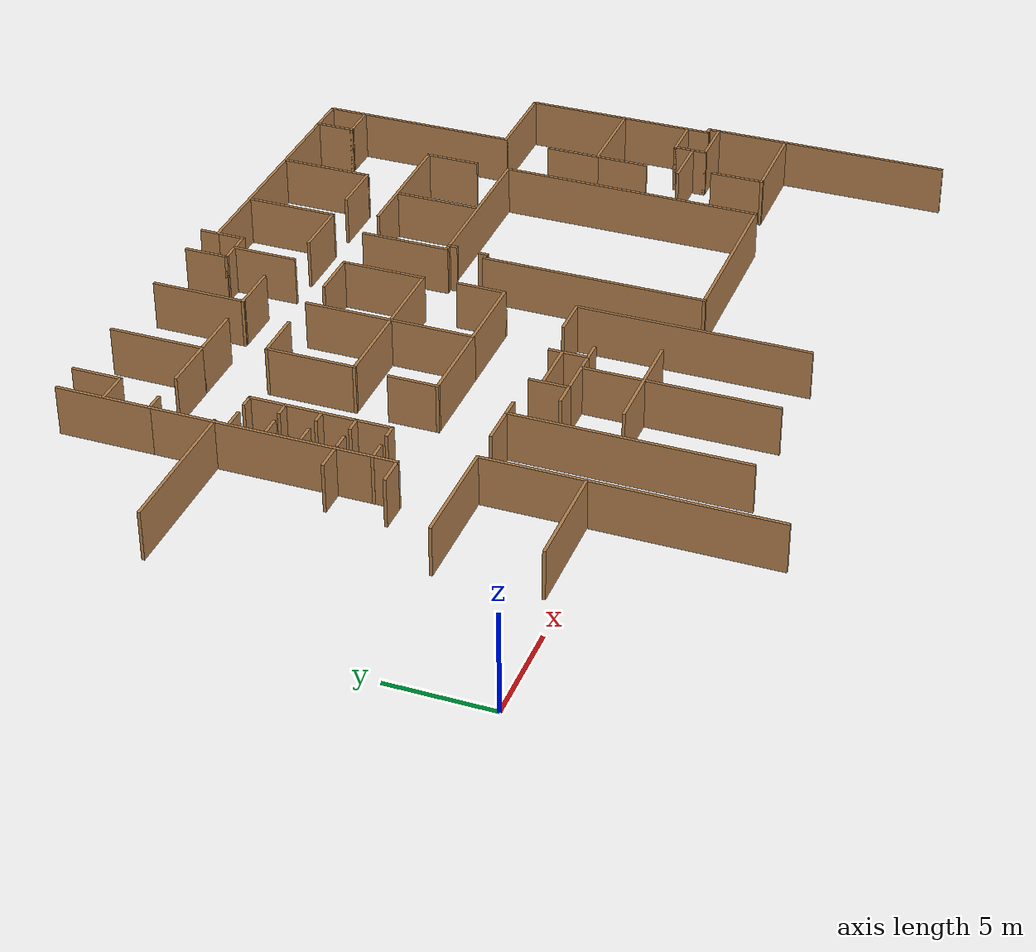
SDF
<sdf version="1.6">
 <model name="floor_plan">
  <pose>-1.19231 -1.13475 0 0 -0 0</pose>
  <link name="Wall_10">
   <collision name="Wall_10_Collision">
    <geometry><box><size>10 0.15 2.5</size></box></geometry>
    <pose>0 0 1.25 0 -0 0</pose>
   </collision>
   <visual name="Wall_10_Visual">
    <pose>0 0 1.25 0 -0 0</pose>
    <geometry><box><size>10 0.15 2.5</size></box></geometry>
    <material>
     <script><uri>file://media/materials/scripts/gazebo.material</uri><name>Gazebo/Wood</name></script>
     <ambient>1 1 1 1</ambient>
    </material>
   </visual>
   <pose>40.65 20.6964 0 0 0 -1.5708</pose>
  </link>
  <link name="Wall_100">
   <collision name="Wall_100_Collision">
    <geometry><box><size>2.25 0.15 2.5</size></box></geometry>
    <pose>0 0 1.25 0 -0 0</pose>
   </collision>
   <visual name="Wall_100_Visual">
    <pose>0 0 1.25 0 -0 0</pose>
    <geometry><box><size>2.25 0.15 2.5</size></box></geometry>
    <material>
     <script><uri>file://media/materials/scripts/gazebo.material</uri><name>Gazebo/Wood</name></script>
     <ambient>1 1 1 1</ambient>
    </material>
   </visual>
   <pose>24.95 25.3214 0 0 -0 1.5708</pose>
  </link>
  <link name="Wall_102">
   <collision name="Wall_102_Collision">
    <geometry><box><size>3.25 0.15 2.5</size></box></geometry>
    <pose>0 0 1.25 0 -0 0</pose>
   </collision>
   <visual name="Wall_102_Visual">
    <pose>0 0 1.25 0 -0 0</pose>
    <geometry><box><size>3.25 0.15 2.5</size></box></geometry>
    <material>
     <script><uri>file://media/materials/scripts/gazebo.material</uri><name>Gazebo/Wood</name></script>
     <ambient>1 1 1 1</ambient>
    </material>
   </visual>
   <pose>25.8652 22.6731 0 0 0 -1.5708</pose>
  </link>
  <link name="Wall_104">
   <collision name="Wall_104_Collision">
    <geometry><box><size>3 0.15 2.5</size></box></geometry>
    <pose>0 0 1.25 0 -0 0</pose>
   </collision>
   <visual name="Wall_104_Visual">
    <pose>0 0 1.25 0 -0 0</pose>
    <geometry><box><size>3 0.15 2.5</size></box></geometry>
    <material>
     <script><uri>file://media/materials/scripts/gazebo.material</uri><name>Gazebo/Wood</name></script>
     <ambient>1 1 1 1</ambient>
    </material>
   </visual>
   <pose>28.998 21.0922 0 0 -0 0</pose>
  </link>
  <link name="Wall_105">
   <collision name="Wall_105_Collision">
    <geometry><box><size>4.65 0.15 2.5</size></box></geometry>
    <pose>0 0 1.25 0 -0 0</pose>
   </collision>
   <visual name="Wall_105_Visual">
    <pose>0 0 1.25 0 -0 0</pose>
    <geometry><box><size>4.65 0.15 2.5</size></box></geometry>
    <material>
     <script><uri>file://media/materials/scripts/gazebo.material</uri><name>Gazebo/Wood</name></script>
     <ambient>1 1 1 1</ambient>
    </material>
   </visual>
   <pose>30.423 23.3422 0 0 -0 1.5708</pose>
  </link>
  <link name="Wall_107">
   <collision name="Wall_107_Collision">
    <geometry><box><size>2.75 0.15 2.5</size></box></geometry>
    <pose>0 0 1.25 0 -0 0</pose>
   </collision>
   <visual name="Wall_107_Visual">
    <pose>0 0 1.25 0 -0 0</pose>
    <geometry><box><size>2.75 0.15 2.5</size></box></geometry>
    <material>
     <script><uri>file://media/materials/scripts/gazebo.material</uri><name>Gazebo/Wood</name></script>
     <ambient>1 1 1 1</ambient>
    </material>
   </visual>
   <pose>33.3717 21.0672 0 0 -0 0</pose>
  </link>
  <link name="Wall_108">
   <collision name="Wall_108_Collision">
    <geometry><box><size>4.65 0.15 2.5</size></box></geometry>
    <pose>0 0 1.25 0 -0 0</pose>
   </collision>
   <visual name="Wall_108_Visual">
    <pose>0 0 1.25 0 -0 0</pose>
    <geometry><box><size>4.65 0.15 2.5</size></box></geometry>
    <material>
     <script><uri>file://media/materials/scripts/gazebo.material</uri><name>Gazebo/Wood</name></script>
     <ambient>1 1 1 1</ambient>
    </material>
   </visual>
   <pose>34.6717 23.3172 0 0 -0 1.5708</pose>
  </link>
  <link name="Wall_11">
   <collision name="Wall_11_Collision">
    <geometry><box><size>4.5 0.15 2.5</size></box></geometry>
    <pose>0 0 1.25 0 -0 0</pose>
   </collision>
   <visual name="Wall_11_Visual">
    <pose>0 0 1.25 0 -0 0</pose>
    <geometry><box><size>4.5 0.15 2.5</size></box></geometry>
    <material>
     <script><uri>file://media/materials/scripts/gazebo.material</uri><name>Gazebo/Wood</name></script>
     <ambient>1 1 1 1</ambient>
    </material>
   </visual>
   <pose>42.825 15.7714 0 0 -0 0</pose>
  </link>
  <link name="Wall_110">
   <collision name="Wall_110_Collision">
    <geometry><box><size>2 0.15 2.5</size></box></geometry>
    <pose>0 0 1.25 0 -0 0</pose>
   </collision>
   <visual name="Wall_110_Visual">
    <pose>0 0 1.25 0 -0 0</pose>
    <geometry><box><size>2 0.15 2.5</size></box></geometry>
    <material>
     <script><uri>file://media/materials/scripts/gazebo.material</uri><name>Gazebo/Wood</name></script>
     <ambient>1 1 1 1</ambient>
    </material>
   </visual>
   <pose>38.8412 24.6589 0 0 0 -1.5708</pose>
  </link>
  <link name="Wall_111">
   <collision name="Wall_111_Collision">
    <geometry><box><size>1.9 0.15 2.5</size></box></geometry>
    <pose>0 0 1.25 0 -0 0</pose>
   </collision>
   <visual name="Wall_111_Visual">
    <pose>0 0 1.25 0 -0 0</pose>
    <geometry><box><size>1.9 0.15 2.5</size></box></geometry>
    <material>
     <script><uri>file://media/materials/scripts/gazebo.material</uri><name>Gazebo/Wood</name></script>
     <ambient>1 1 1 1</ambient>
    </material>
   </visual>
   <pose>39.7162 23.7339 0 0 -0 0</pose>
  </link>
  <link name="Wall_113">
   <collision name="Wall_113_Collision">
    <geometry><box><size>12 0.15 2.5</size></box></geometry>
    <pose>0 0 1.25 0 -0 0</pose>
   </collision>
   <visual name="Wall_113_Visual">
    <pose>0 0 1.25 0 -0 0</pose>
    <geometry><box><size>12 0.15 2.5</size></box></geometry>
    <material>
     <script><uri>file://media/materials/scripts/gazebo.material</uri><name>Gazebo/Wood</name></script>
     <ambient>1 1 1 1</ambient>
    </material>
   </visual>
   <pose>12.1534 15.9139 0 0 0 -1.5708</pose>
  </link>
  <link name="Wall_114">
   <collision name="Wall_114_Collision">
    <geometry><box><size>1.5 0.15 2.5</size></box></geometry>
    <pose>0 0 1.25 0 -0 0</pose>
   </collision>
   <visual name="Wall_114_Visual">
    <pose>0 0 1.25 0 -0 0</pose>
    <geometry><box><size>1.5 0.15 2.5</size></box></geometry>
    <material>
     <script><uri>file://media/materials/scripts/gazebo.material</uri><name>Gazebo/Wood</name></script>
     <ambient>1 1 1 1</ambient>
    </material>
   </visual>
   <pose>11.4784 9.98893 0 0 -0 3.14159</pose>
  </link>
  <link name="Wall_12">
   <collision name="Wall_12_Collision">
    <geometry><box><size>9.75 0.15 2.5</size></box></geometry>
    <pose>0 0 1.25 0 -0 0</pose>
   </collision>
   <visual name="Wall_12_Visual">
    <pose>0 0 1.25 0 -0 0</pose>
    <geometry><box><size>9.75 0.15 2.5</size></box></geometry>
    <material>
     <script><uri>file://media/materials/scripts/gazebo.material</uri><name>Gazebo/Wood</name></script>
     <ambient>1 1 1 1</ambient>
    </material>
   </visual>
   <pose>45 10.9714 0 0 0 -1.5708</pose>
  </link>
  <link name="Wall_120">
   <collision name="Wall_120_Collision">
    <geometry><box><size>1 0.15 2.5</size></box></geometry>
    <pose>0 0 1.25 0 -0 0</pose>
   </collision>
   <visual name="Wall_120_Visual">
    <pose>0 0 1.25 0 -0 0</pose>
    <geometry><box><size>1 0.15 2.5</size></box></geometry>
    <material>
     <script><uri>file://media/materials/scripts/gazebo.material</uri><name>Gazebo/Wood</name></script>
     <ambient>1 1 1 1</ambient>
    </material>
   </visual>
   <pose>12.6925 17.9951 0 0 -0 3.14159</pose>
  </link>
  <link name="Wall_124">
   <collision name="Wall_124_Collision">
    <geometry><box><size>1 0.15 2.5</size></box></geometry>
    <pose>0 0 1.25 0 -0 0</pose>
   </collision>
   <visual name="Wall_124_Visual">
    <pose>0 0 1.25 0 -0 0</pose>
    <geometry><box><size>1 0.15 2.5</size></box></geometry>
    <material>
     <script><uri>file://media/materials/scripts/gazebo.material</uri><name>Gazebo/Wood</name></script>
     <ambient>1 1 1 1</ambient>
    </material>
   </visual>
   <pose>12.669 16.2306 0 0 -0 3.14159</pose>
  </link>
  <link name="Wall_126">
   <collision name="Wall_126_Collision">
    <geometry><box><size>1 0.15 2.5</size></box></geometry>
    <pose>0 0 1.25 0 -0 0</pose>
   </collision>
   <visual name="Wall_126_Visual">
    <pose>0 0 1.25 0 -0 0</pose>
    <geometry><box><size>1 0.15 2.5</size></box></geometry>
    <material>
     <script><uri>file://media/materials/scripts/gazebo.material</uri><name>Gazebo/Wood</name></script>
     <ambient>1 1 1 1</ambient>
    </material>
   </visual>
   <pose>12.6219 14.5602 0 0 -0 3.14159</pose>
  </link>
  <link name="Wall_128">
   <collision name="Wall_128_Collision">
    <geometry><box><size>1 0.15 2.5</size></box></geometry>
    <pose>0 0 1.25 0 -0 0</pose>
   </collision>
   <visual name="Wall_128_Visual">
    <pose>0 0 1.25 0 -0 0</pose>
    <geometry><box><size>1 0.15 2.5</size></box></geometry>
    <material>
     <script><uri>file://media/materials/scripts/gazebo.material</uri><name>Gazebo/Wood</name></script>
     <ambient>1 1 1 1</ambient>
    </material>
   </visual>
   <pose>12.6454 12.8898 0 0 -0 3.14159</pose>
  </link>
  <link name="Wall_13">
   <collision name="Wall_13_Collision">
    <geometry><box><size>0.5 0.15 2.5</size></box></geometry>
    <pose>0 0 1.25 0 -0 0</pose>
   </collision>
   <visual name="Wall_13_Visual">
    <pose>0 0 1.25 0 -0 0</pose>
    <geometry><box><size>0.5 0.15 2.5</size></box></geometry>
    <material>
     <script><uri>file://media/materials/scripts/gazebo.material</uri><name>Gazebo/Wood</name></script>
     <ambient>1 1 1 1</ambient>
    </material>
   </visual>
   <pose>45.175 6.1714 0 0 -0 0</pose>
  </link>
  <link name="Wall_130">
   <collision name="Wall_130_Collision">
    <geometry><box><size>1 0.15 2.5</size></box></geometry>
    <pose>0 0 1.25 0 -0 0</pose>
   </collision>
   <visual name="Wall_130_Visual">
    <pose>0 0 1.25 0 -0 0</pose>
    <geometry><box><size>1 0.15 2.5</size></box></geometry>
    <material>
     <script><uri>file://media/materials/scripts/gazebo.material</uri><name>Gazebo/Wood</name></script>
     <ambient>1 1 1 1</ambient>
    </material>
   </visual>
   <pose>12.5749 11.1253 0 0 -0 3.14159</pose>
  </link>
  <link name="Wall_14">
   <collision name="Wall_14_Collision">
    <geometry><box><size>12.5 0.15 2.5</size></box></geometry>
    <pose>0 0 1.25 0 -0 0</pose>
   </collision>
   <visual name="Wall_14_Visual">
    <pose>0 0 1.25 0 -0 0</pose>
    <geometry><box><size>12.5 0.15 2.5</size></box></geometry>
    <material>
     <script><uri>file://media/materials/scripts/gazebo.material</uri><name>Gazebo/Wood</name></script>
     <ambient>1 1 1 1</ambient>
    </material>
   </visual>
   <pose>45.35 -0.003604 0 0 0 -1.5708</pose>
  </link>
  <link name="Wall_142">
   <collision name="Wall_142_Collision">
    <geometry><box><size>0.75 0.15 2.5</size></box></geometry>
    <pose>0 0 1.25 0 -0 0</pose>
   </collision>
   <visual name="Wall_142_Visual">
    <pose>0 0 1.25 0 -0 0</pose>
    <geometry><box><size>0.75 0.15 2.5</size></box></geometry>
    <material>
     <script><uri>file://media/materials/scripts/gazebo.material</uri><name>Gazebo/Wood</name></script>
     <ambient>1 1 1 1</ambient>
    </material>
   </visual>
   <pose>14.1127 18.0225 0 0 -0 0</pose>
  </link>
  <link name="Wall_143">
   <collision name="Wall_143_Collision">
    <geometry><box><size>7 0.15 2.5</size></box></geometry>
    <pose>0 0 1.25 0 -0 0</pose>
   </collision>
   <visual name="Wall_143_Visual">
    <pose>0 0 1.25 0 -0 0</pose>
    <geometry><box><size>7 0.15 2.5</size></box></geometry>
    <material>
     <script><uri>file://media/materials/scripts/gazebo.material</uri><name>Gazebo/Wood</name></script>
     <ambient>1 1 1 1</ambient>
    </material>
   </visual>
   <pose>14.4127 14.5975 0 0 0 -1.5708</pose>
  </link>
  <link name="Wall_144">
   <collision name="Wall_144_Collision">
    <geometry><box><size>0.75 0.15 2.5</size></box></geometry>
    <pose>0 0 1.25 0 -0 0</pose>
   </collision>
   <visual name="Wall_144_Visual">
    <pose>0 0 1.25 0 -0 0</pose>
    <geometry><box><size>0.75 0.15 2.5</size></box></geometry>
    <material>
     <script><uri>file://media/materials/scripts/gazebo.material</uri><name>Gazebo/Wood</name></script>
     <ambient>1 1 1 1</ambient>
    </material>
   </visual>
   <pose>14.1127 11.1725 0 0 -0 3.14159</pose>
  </link>
  <link name="Wall_148">
   <collision name="Wall_148_Collision">
    <geometry><box><size>0.75 0.15 2.5</size></box></geometry>
    <pose>0 0 1.25 0 -0 0</pose>
   </collision>
   <visual name="Wall_148_Visual">
    <pose>0 0 1.25 0 -0 0</pose>
    <geometry><box><size>0.75 0.15 2.5</size></box></geometry>
    <material>
     <script><uri>file://media/materials/scripts/gazebo.material</uri><name>Gazebo/Wood</name></script>
     <ambient>1 1 1 1</ambient>
    </material>
   </visual>
   <pose>14.0607 16.2859 0 0 -0 3.14159</pose>
  </link>
  <link name="Wall_150">
   <collision name="Wall_150_Collision">
    <geometry><box><size>0.75 0.15 2.5</size></box></geometry>
    <pose>0 0 1.25 0 -0 0</pose>
   </collision>
   <visual name="Wall_150_Visual">
    <pose>0 0 1.25 0 -0 0</pose>
    <geometry><box><size>0.75 0.15 2.5</size></box></geometry>
    <material>
     <script><uri>file://media/materials/scripts/gazebo.material</uri><name>Gazebo/Wood</name></script>
     <ambient>1 1 1 1</ambient>
    </material>
   </visual>
   <pose>14.1016 14.5265 0 0 -0 3.14159</pose>
  </link>
  <link name="Wall_152">
   <collision name="Wall_152_Collision">
    <geometry><box><size>0.75 0.15 2.5</size></box></geometry>
    <pose>0 0 1.25 0 -0 0</pose>
   </collision>
   <visual name="Wall_152_Visual">
    <pose>0 0 1.25 0 -0 0</pose>
    <geometry><box><size>0.75 0.15 2.5</size></box></geometry>
    <material>
     <script><uri>file://media/materials/scripts/gazebo.material</uri><name>Gazebo/Wood</name></script>
     <ambient>1 1 1 1</ambient>
    </material>
   </visual>
   <pose>14.0607 12.8694 0 0 -0 3.14159</pose>
  </link>
  <link name="Wall_171">
   <collision name="Wall_171_Collision">
    <geometry><box><size>8.5 0.15 2.5</size></box></geometry>
    <pose>0 0 1.25 0 -0 0</pose>
   </collision>
   <visual name="Wall_171_Visual">
    <pose>0 0 1.25 0 -0 0</pose>
    <geometry><box><size>8.5 0.15 2.5</size></box></geometry>
    <material>
     <script><uri>file://media/materials/scripts/gazebo.material</uri><name>Gazebo/Wood</name></script>
     <ambient>1 1 1 1</ambient>
    </material>
   </visual>
   <pose>22.4756 14.7101 0 0 0 -1.5708</pose>
  </link>
  <link name="Wall_172">
   <collision name="Wall_172_Collision">
    <geometry><box><size>4.5 0.15 2.5</size></box></geometry>
    <pose>0 0 1.25 0 -0 0</pose>
   </collision>
   <visual name="Wall_172_Visual">
    <pose>0 0 1.25 0 -0 0</pose>
    <geometry><box><size>4.5 0.15 2.5</size></box></geometry>
    <material>
     <script><uri>file://media/materials/scripts/gazebo.material</uri><name>Gazebo/Wood</name></script>
     <ambient>1 1 1 1</ambient>
    </material>
   </visual>
   <pose>20.3006 10.5351 0 0 -0 3.14159</pose>
  </link>
  <link name="Wall_173">
   <collision name="Wall_173_Collision">
    <geometry><box><size>2.5 0.15 2.5</size></box></geometry>
    <pose>0 0 1.25 0 -0 0</pose>
   </collision>
   <visual name="Wall_173_Visual">
    <pose>0 0 1.25 0 -0 0</pose>
    <geometry><box><size>2.5 0.15 2.5</size></box></geometry>
    <material>
     <script><uri>file://media/materials/scripts/gazebo.material</uri><name>Gazebo/Wood</name></script>
     <ambient>1 1 1 1</ambient>
    </material>
   </visual>
   <pose>18.1256 11.7101 0 0 -0 1.5708</pose>
  </link>
  <link name="Wall_175">
   <collision name="Wall_175_Collision">
    <geometry><box><size>4.25 0.15 2.5</size></box></geometry>
    <pose>0 0 1.25 0 -0 0</pose>
   </collision>
   <visual name="Wall_175_Visual">
    <pose>0 0 1.25 0 -0 0</pose>
    <geometry><box><size>4.25 0.15 2.5</size></box></geometry>
    <material>
     <script><uri>file://media/materials/scripts/gazebo.material</uri><name>Gazebo/Wood</name></script>
     <ambient>1 1 1 1</ambient>
    </material>
   </visual>
   <pose>20.3031 14.6405 0 0 -0 3.14159</pose>
  </link>
  <link name="Wall_176">
   <collision name="Wall_176_Collision">
    <geometry><box><size>4.5 0.15 2.5</size></box></geometry>
    <pose>0 0 1.25 0 -0 0</pose>
   </collision>
   <visual name="Wall_176_Visual">
    <pose>0 0 1.25 0 -0 0</pose>
    <geometry><box><size>4.5 0.15 2.5</size></box></geometry>
    <material>
     <script><uri>file://media/materials/scripts/gazebo.material</uri><name>Gazebo/Wood</name></script>
     <ambient>1 1 1 1</ambient>
    </material>
   </visual>
   <pose>18.2532 16.8155 0 0 -0 1.5708</pose>
  </link>
  <link name="Wall_178">
   <collision name="Wall_178_Collision">
    <geometry><box><size>4.25 0.15 2.5</size></box></geometry>
    <pose>0 0 1.25 0 -0 0</pose>
   </collision>
   <visual name="Wall_178_Visual">
    <pose>0 0 1.25 0 -0 0</pose>
    <geometry><box><size>4.25 0.15 2.5</size></box></geometry>
    <material>
     <script><uri>file://media/materials/scripts/gazebo.material</uri><name>Gazebo/Wood</name></script>
     <ambient>1 1 1 1</ambient>
    </material>
   </visual>
   <pose>24.5256 10.5351 0 0 -0 0</pose>
  </link>
  <link name="Wall_179">
   <collision name="Wall_179_Collision">
    <geometry><box><size>2.5 0.15 2.5</size></box></geometry>
    <pose>0 0 1.25 0 -0 0</pose>
   </collision>
   <visual name="Wall_179_Visual">
    <pose>0 0 1.25 0 -0 0</pose>
    <geometry><box><size>2.5 0.15 2.5</size></box></geometry>
    <material>
     <script><uri>file://media/materials/scripts/gazebo.material</uri><name>Gazebo/Wood</name></script>
     <ambient>1 1 1 1</ambient>
    </material>
   </visual>
   <pose>26.5756 11.7101 0 0 -0 1.5708</pose>
  </link>
  <link name="Wall_181">
   <collision name="Wall_181_Collision">
    <geometry><box><size>4.25 0.15 2.5</size></box></geometry>
    <pose>0 0 1.25 0 -0 0</pose>
   </collision>
   <visual name="Wall_181_Visual">
    <pose>0 0 1.25 0 -0 0</pose>
    <geometry><box><size>4.25 0.15 2.5</size></box></geometry>
    <material>
     <script><uri>file://media/materials/scripts/gazebo.material</uri><name>Gazebo/Wood</name></script>
     <ambient>1 1 1 1</ambient>
    </material>
   </visual>
   <pose>24.4032 14.6405 0 0 -0 0</pose>
  </link>
  <link name="Wall_182">
   <collision name="Wall_182_Collision">
    <geometry><box><size>4.25 0.15 2.5</size></box></geometry>
    <pose>0 0 1.25 0 -0 0</pose>
   </collision>
   <visual name="Wall_182_Visual">
    <pose>0 0 1.25 0 -0 0</pose>
    <geometry><box><size>4.25 0.15 2.5</size></box></geometry>
    <material>
     <script><uri>file://media/materials/scripts/gazebo.material</uri><name>Gazebo/Wood</name></script>
     <ambient>1 1 1 1</ambient>
    </material>
   </visual>
   <pose>26.4532 16.6905 0 0 -0 1.5708</pose>
  </link>
  <link name="Wall_183">
   <collision name="Wall_183_Collision">
    <geometry><box><size>2.5 0.15 2.5</size></box></geometry>
    <pose>0 0 1.25 0 -0 0</pose>
   </collision>
   <visual name="Wall_183_Visual">
    <pose>0 0 1.25 0 -0 0</pose>
    <geometry><box><size>2.5 0.15 2.5</size></box></geometry>
    <material>
     <script><uri>file://media/materials/scripts/gazebo.material</uri><name>Gazebo/Wood</name></script>
     <ambient>1 1 1 1</ambient>
    </material>
   </visual>
   <pose>25.2782 18.7405 0 0 -0 3.14159</pose>
  </link>
  <link name="Wall_185">
   <collision name="Wall_185_Collision">
    <geometry><box><size>2.5 0.15 2.5</size></box></geometry>
    <pose>0 0 1.25 0 -0 0</pose>
   </collision>
   <visual name="Wall_185_Visual">
    <pose>0 0 1.25 0 -0 0</pose>
    <geometry><box><size>2.5 0.15 2.5</size></box></geometry>
    <material>
     <script><uri>file://media/materials/scripts/gazebo.material</uri><name>Gazebo/Wood</name></script>
     <ambient>1 1 1 1</ambient>
    </material>
   </visual>
   <pose>19.4281 18.9905 0 0 -0 0</pose>
  </link>
  <link name="Wall_187">
   <collision name="Wall_187_Collision">
    <geometry><box><size>4.5 0.15 2.5</size></box></geometry>
    <pose>0 0 1.25 0 -0 0</pose>
   </collision>
   <visual name="Wall_187_Visual">
    <pose>0 0 1.25 0 -0 0</pose>
    <geometry><box><size>4.5 0.15 2.5</size></box></geometry>
    <material>
     <script><uri>file://media/materials/scripts/gazebo.material</uri><name>Gazebo/Wood</name></script>
     <ambient>1 1 1 1</ambient>
    </material>
   </visual>
   <pose>29.3003 16.7441 0 0 0 -1.5708</pose>
  </link>
  <link name="Wall_190">
   <collision name="Wall_190_Collision">
    <geometry><box><size>0.5 0.15 2.5</size></box></geometry>
    <pose>0 0 1.25 0 -0 0</pose>
   </collision>
   <visual name="Wall_190_Visual">
    <pose>0 0 1.25 0 -0 0</pose>
    <geometry><box><size>0.5 0.15 2.5</size></box></geometry>
    <material>
     <script><uri>file://media/materials/scripts/gazebo.material</uri><name>Gazebo/Wood</name></script>
     <ambient>1 1 1 1</ambient>
    </material>
   </visual>
   <pose>29.4753 14.5691 0 0 -0 0</pose>
  </link>
  <link name="Wall_191">
   <collision name="Wall_191_Collision">
    <geometry><box><size>0.5 0.15 2.5</size></box></geometry>
    <pose>0 0 1.25 0 -0 0</pose>
   </collision>
   <visual name="Wall_191_Visual">
    <pose>0 0 1.25 0 -0 0</pose>
    <geometry><box><size>0.5 0.15 2.5</size></box></geometry>
    <material>
     <script><uri>file://media/materials/scripts/gazebo.material</uri><name>Gazebo/Wood</name></script>
     <ambient>1 1 1 1</ambient>
    </material>
   </visual>
   <pose>29.6503 14.3941 0 0 0 -1.5708</pose>
  </link>
  <link name="Wall_193">
   <collision name="Wall_193_Collision">
    <geometry><box><size>6.75 0.15 2.5</size></box></geometry>
    <pose>0 0 1.25 0 -0 0</pose>
   </collision>
   <visual name="Wall_193_Visual">
    <pose>0 0 1.25 0 -0 0</pose>
    <geometry><box><size>6.75 0.15 2.5</size></box></geometry>
    <material>
     <script><uri>file://media/materials/scripts/gazebo.material</uri><name>Gazebo/Wood</name></script>
     <ambient>1 1 1 1</ambient>
    </material>
   </visual>
   <pose>34.4228 18.9244 0 0 -0 0</pose>
  </link>
  <link name="Wall_194">
   <collision name="Wall_194_Collision">
    <geometry><box><size>2.75 0.15 2.5</size></box></geometry>
    <pose>0 0 1.25 0 -0 0</pose>
   </collision>
   <visual name="Wall_194_Visual">
    <pose>0 0 1.25 0 -0 0</pose>
    <geometry><box><size>2.75 0.15 2.5</size></box></geometry>
    <material>
     <script><uri>file://media/materials/scripts/gazebo.material</uri><name>Gazebo/Wood</name></script>
     <ambient>1 1 1 1</ambient>
    </material>
   </visual>
   <pose>37.7228 17.6244 0 0 0 -1.5708</pose>
  </link>
  <link name="Wall_196">
   <collision name="Wall_196_Collision">
    <geometry><box><size>8.25 0.15 2.5</size></box></geometry>
    <pose>0 0 1.25 0 -0 0</pose>
   </collision>
   <visual name="Wall_196_Visual">
    <pose>0 0 1.25 0 -0 0</pose>
    <geometry><box><size>8.25 0.15 2.5</size></box></geometry>
    <material>
     <script><uri>file://media/materials/scripts/gazebo.material</uri><name>Gazebo/Wood</name></script>
     <ambient>1 1 1 1</ambient>
    </material>
   </visual>
   <pose>33.7003 14.5691 0 0 -0 0</pose>
  </link>
  <link name="Wall_197">
   <collision name="Wall_197_Collision">
    <geometry><box><size>13.25 0.15 2.5</size></box></geometry>
    <pose>0 0 1.25 0 -0 0</pose>
   </collision>
   <visual name="Wall_197_Visual">
    <pose>0 0 1.25 0 -0 0</pose>
    <geometry><box><size>13.25 0.15 2.5</size></box></geometry>
    <material>
     <script><uri>file://media/materials/scripts/gazebo.material</uri><name>Gazebo/Wood</name></script>
     <ambient>1 1 1 1</ambient>
    </material>
   </visual>
   <pose>37.7503 8.01909 0 0 0 -1.5708</pose>
  </link>
  <link name="Wall_198">
   <collision name="Wall_198_Collision">
    <geometry><box><size>8.75 0.15 2.5</size></box></geometry>
    <pose>0 0 1.25 0 -0 0</pose>
   </collision>
   <visual name="Wall_198_Visual">
    <pose>0 0 1.25 0 -0 0</pose>
    <geometry><box><size>8.75 0.15 2.5</size></box></geometry>
    <material>
     <script><uri>file://media/materials/scripts/gazebo.material</uri><name>Gazebo/Wood</name></script>
     <ambient>1 1 1 1</ambient>
    </material>
   </visual>
   <pose>33.4503 1.46909 0 0 -0 3.14159</pose>
  </link>
  <link name="Wall_199">
   <collision name="Wall_199_Collision">
    <geometry><box><size>11.25 0.15 2.5</size></box></geometry>
    <pose>0 0 1.25 0 -0 0</pose>
   </collision>
   <visual name="Wall_199_Visual">
    <pose>0 0 1.25 0 -0 0</pose>
    <geometry><box><size>11.25 0.15 2.5</size></box></geometry>
    <material>
     <script><uri>file://media/materials/scripts/gazebo.material</uri><name>Gazebo/Wood</name></script>
     <ambient>1 1 1 1</ambient>
    </material>
   </visual>
   <pose>29.1503 7.01909 0 0 -0 1.5708</pose>
  </link>
  <link name="Wall_200">
   <collision name="Wall_200_Collision">
    <geometry><box><size>0.5 0.15 2.5</size></box></geometry>
    <pose>0 0 1.25 0 -0 0</pose>
   </collision>
   <visual name="Wall_200_Visual">
    <pose>0 0 1.25 0 -0 0</pose>
    <geometry><box><size>0.5 0.15 2.5</size></box></geometry>
    <material>
     <script><uri>file://media/materials/scripts/gazebo.material</uri><name>Gazebo/Wood</name></script>
     <ambient>1 1 1 1</ambient>
    </material>
   </visual>
   <pose>29.3253 12.5691 0 0 -0 0</pose>
  </link>
  <link name="Wall_201">
   <collision name="Wall_201_Collision">
    <geometry><box><size>0.5 0.15 2.5</size></box></geometry>
    <pose>0 0 1.25 0 -0 0</pose>
   </collision>
   <visual name="Wall_201_Visual">
    <pose>0 0 1.25 0 -0 0</pose>
    <geometry><box><size>0.5 0.15 2.5</size></box></geometry>
    <material>
     <script><uri>file://media/materials/scripts/gazebo.material</uri><name>Gazebo/Wood</name></script>
     <ambient>1 1 1 1</ambient>
    </material>
   </visual>
   <pose>29.5003 12.7441 0 0 -0 1.5708</pose>
  </link>
  <link name="Wall_203">
   <collision name="Wall_203_Collision">
    <geometry><box><size>4.4 0.15 2.5</size></box></geometry>
    <pose>0 0 1.25 0 -0 0</pose>
   </collision>
   <visual name="Wall_203_Visual">
    <pose>0 0 1.25 0 -0 0</pose>
    <geometry><box><size>4.4 0.15 2.5</size></box></geometry>
    <material>
     <script><uri>file://media/materials/scripts/gazebo.material</uri><name>Gazebo/Wood</name></script>
     <ambient>1 1 1 1</ambient>
    </material>
   </visual>
   <pose>33.5048 16.7647 0 0 0 -1.5708</pose>
  </link>
  <link name="Wall_205">
   <collision name="Wall_205_Collision">
    <geometry><box><size>2.75 0.15 2.5</size></box></geometry>
    <pose>0 0 1.25 0 -0 0</pose>
   </collision>
   <visual name="Wall_205_Visual">
    <pose>0 0 1.25 0 -0 0</pose>
    <geometry><box><size>2.75 0.15 2.5</size></box></geometry>
    <material>
     <script><uri>file://media/materials/scripts/gazebo.material</uri><name>Gazebo/Wood</name></script>
     <ambient>1 1 1 1</ambient>
    </material>
   </visual>
   <pose>40.5462 12.0266 0 0 0 -1.5708</pose>
  </link>
  <link name="Wall_206">
   <collision name="Wall_206_Collision">
    <geometry><box><size>4.5 0.15 2.5</size></box></geometry>
    <pose>0 0 1.25 0 -0 0</pose>
   </collision>
   <visual name="Wall_206_Visual">
    <pose>0 0 1.25 0 -0 0</pose>
    <geometry><box><size>4.5 0.15 2.5</size></box></geometry>
    <material>
     <script><uri>file://media/materials/scripts/gazebo.material</uri><name>Gazebo/Wood</name></script>
     <ambient>1 1 1 1</ambient>
    </material>
   </visual>
   <pose>42.7212 10.7266 0 0 -0 0</pose>
  </link>
  <link name="Wall_208">
   <collision name="Wall_208_Collision">
    <geometry><box><size>2.75 0.15 2.5</size></box></geometry>
    <pose>0 0 1.25 0 -0 0</pose>
   </collision>
   <visual name="Wall_208_Visual">
    <pose>0 0 1.25 0 -0 0</pose>
    <geometry><box><size>2.75 0.15 2.5</size></box></geometry>
    <material>
     <script><uri>file://media/materials/scripts/gazebo.material</uri><name>Gazebo/Wood</name></script>
     <ambient>1 1 1 1</ambient>
    </material>
   </visual>
   <pose>40.5462 9.42658 0 0 0 -1.5708</pose>
  </link>
  <link name="Wall_210">
   <collision name="Wall_210_Collision">
    <geometry><box><size>2.25 0.15 2.5</size></box></geometry>
    <pose>0 0 1.25 0 -0 0</pose>
   </collision>
   <visual name="Wall_210_Visual">
    <pose>0 0 1.25 0 -0 0</pose>
    <geometry><box><size>2.25 0.15 2.5</size></box></geometry>
    <material>
     <script><uri>file://media/materials/scripts/gazebo.material</uri><name>Gazebo/Wood</name></script>
     <ambient>1 1 1 1</ambient>
    </material>
   </visual>
   <pose>43.9506 7.25134 0 0 -0 3.14159</pose>
  </link>
  <link name="Wall_211">
   <collision name="Wall_211_Collision">
    <geometry><box><size>1.75 0.15 2.5</size></box></geometry>
    <pose>0 0 1.25 0 -0 0</pose>
   </collision>
   <visual name="Wall_211_Visual">
    <pose>0 0 1.25 0 -0 0</pose>
    <geometry><box><size>1.75 0.15 2.5</size></box></geometry>
    <material>
     <script><uri>file://media/materials/scripts/gazebo.material</uri><name>Gazebo/Wood</name></script>
     <ambient>1 1 1 1</ambient>
    </material>
   </visual>
   <pose>42.9006 6.45134 0 0 0 -1.5708</pose>
  </link>
  <link name="Wall_212">
   <collision name="Wall_212_Collision">
    <geometry><box><size>2.5 0.15 2.5</size></box></geometry>
    <pose>0 0 1.25 0 -0 0</pose>
   </collision>
   <visual name="Wall_212_Visual">
    <pose>0 0 1.25 0 -0 0</pose>
    <geometry><box><size>2.5 0.15 2.5</size></box></geometry>
    <material>
     <script><uri>file://media/materials/scripts/gazebo.material</uri><name>Gazebo/Wood</name></script>
     <ambient>1 1 1 1</ambient>
    </material>
   </visual>
   <pose>44.0756 5.65134 0 0 -0 0</pose>
  </link>
  <link name="Wall_215">
   <collision name="Wall_215_Collision">
    <geometry><box><size>2.65 0.15 2.5</size></box></geometry>
    <pose>0 0 1.25 0 -0 0</pose>
   </collision>
   <visual name="Wall_215_Visual">
    <pose>0 0 1.25 0 -0 0</pose>
    <geometry><box><size>2.65 0.15 2.5</size></box></geometry>
    <material>
     <script><uri>file://media/materials/scripts/gazebo.material</uri><name>Gazebo/Wood</name></script>
     <ambient>1 1 1 1</ambient>
    </material>
   </visual>
   <pose>41.5966 6.31954 0 0 -0 3.14159</pose>
  </link>
  <link name="Wall_218">
   <collision name="Wall_218_Collision">
    <geometry><box><size>4.5 0.15 2.5</size></box></geometry>
    <pose>0 0 1.25 0 -0 0</pose>
   </collision>
   <visual name="Wall_218_Visual">
    <pose>0 0 1.25 0 -0 0</pose>
    <geometry><box><size>4.5 0.15 2.5</size></box></geometry>
    <material>
     <script><uri>file://media/materials/scripts/gazebo.material</uri><name>Gazebo/Wood</name></script>
     <ambient>1 1 1 1</ambient>
    </material>
   </visual>
   <pose>43.1299 2.06258 0 0 -0 3.14159</pose>
  </link>
  <link name="Wall_219">
   <collision name="Wall_219_Collision">
    <geometry><box><size>2.75 0.15 2.5</size></box></geometry>
    <pose>0 0 1.25 0 -0 0</pose>
   </collision>
   <visual name="Wall_219_Visual">
    <pose>0 0 1.25 0 -0 0</pose>
    <geometry><box><size>2.75 0.15 2.5</size></box></geometry>
    <material>
     <script><uri>file://media/materials/scripts/gazebo.material</uri><name>Gazebo/Wood</name></script>
     <ambient>1 1 1 1</ambient>
    </material>
   </visual>
   <pose>40.9549 3.36258 0 0 -0 1.5708</pose>
  </link>
  <link name="Wall_423">
   <collision name="Wall_423_Collision">
    <geometry><box><size>1 0.15 2.5</size></box></geometry>
    <pose>0 0 1.25 0 -0 0</pose>
   </collision>
   <visual name="Wall_423_Visual">
    <pose>0 0 1.25 0 -0 0</pose>
    <geometry><box><size>1 0.15 2.5</size></box></geometry>
    <material>
     <script><uri>file://media/materials/scripts/gazebo.material</uri><name>Gazebo/Wood</name></script>
     <ambient>1 1 1 1</ambient>
    </material>
   </visual>
   <pose>17.6434 6.91331 0 0 -0 3.14159</pose>
  </link>
  <link name="Wall_424">
   <collision name="Wall_424_Collision">
    <geometry><box><size>11.5 0.15 2.5</size></box></geometry>
    <pose>0 0 1.25 0 -0 0</pose>
   </collision>
   <visual name="Wall_424_Visual">
    <pose>0 0 1.25 0 -0 0</pose>
    <geometry><box><size>11.5 0.15 2.5</size></box></geometry>
    <material>
     <script><uri>file://media/materials/scripts/gazebo.material</uri><name>Gazebo/Wood</name></script>
     <ambient>1 1 1 1</ambient>
    </material>
   </visual>
   <pose>17.2184 1.23832 0 0 0 -1.5708</pose>
  </link>
  <link name="Wall_428">
   <collision name="Wall_428_Collision">
    <geometry><box><size>11.5 0.15 2.5</size></box></geometry>
    <pose>0 0 1.25 0 -0 0</pose>
   </collision>
   <visual name="Wall_428_Visual">
    <pose>0 0 1.25 0 -0 0</pose>
    <geometry><box><size>11.5 0.15 2.5</size></box></geometry>
    <material>
     <script><uri>file://media/materials/scripts/gazebo.material</uri><name>Gazebo/Wood</name></script>
     <ambient>1 1 1 1</ambient>
    </material>
   </visual>
   <pose>26.5684 1.23832 0 0 -0 1.5708</pose>
  </link>
  <link name="Wall_429">
   <collision name="Wall_429_Collision">
    <geometry><box><size>2 0.15 2.5</size></box></geometry>
    <pose>0 0 1.25 0 -0 0</pose>
   </collision>
   <visual name="Wall_429_Visual">
    <pose>0 0 1.25 0 -0 0</pose>
    <geometry><box><size>2 0.15 2.5</size></box></geometry>
    <material>
     <script><uri>file://media/materials/scripts/gazebo.material</uri><name>Gazebo/Wood</name></script>
     <ambient>1 1 1 1</ambient>
    </material>
   </visual>
   <pose>25.6434 6.91331 0 0 -0 3.14159</pose>
  </link>
  <link name="Wall_431">
   <collision name="Wall_431_Collision">
    <geometry><box><size>2 0.15 2.5</size></box></geometry>
    <pose>0 0 1.25 0 -0 0</pose>
   </collision>
   <visual name="Wall_431_Visual">
    <pose>0 0 1.25 0 -0 0</pose>
    <geometry><box><size>2 0.15 2.5</size></box></geometry>
    <material>
     <script><uri>file://media/materials/scripts/gazebo.material</uri><name>Gazebo/Wood</name></script>
     <ambient>1 1 1 1</ambient>
    </material>
   </visual>
   <pose>20.0799 5.92446 0 0 0 -1.5708</pose>
  </link>
  <link name="Wall_432">
   <collision name="Wall_432_Collision">
    <geometry><box><size>2.75 0.15 2.5</size></box></geometry>
    <pose>0 0 1.25 0 -0 0</pose>
   </collision>
   <visual name="Wall_432_Visual">
    <pose>0 0 1.25 0 -0 0</pose>
    <geometry><box><size>2.75 0.15 2.5</size></box></geometry>
    <material>
     <script><uri>file://media/materials/scripts/gazebo.material</uri><name>Gazebo/Wood</name></script>
     <ambient>1 1 1 1</ambient>
    </material>
   </visual>
   <pose>21.3799 4.99946 0 0 -0 0</pose>
  </link>
  <link name="Wall_433">
   <collision name="Wall_433_Collision">
    <geometry><box><size>2 0.15 2.5</size></box></geometry>
    <pose>0 0 1.25 0 -0 0</pose>
   </collision>
   <visual name="Wall_433_Visual">
    <pose>0 0 1.25 0 -0 0</pose>
    <geometry><box><size>2 0.15 2.5</size></box></geometry>
    <material>
     <script><uri>file://media/materials/scripts/gazebo.material</uri><name>Gazebo/Wood</name></script>
     <ambient>1 1 1 1</ambient>
    </material>
   </visual>
   <pose>22.6799 5.92446 0 0 -0 1.5708</pose>
  </link>
  <link name="Wall_435">
   <collision name="Wall_435_Collision">
    <geometry><box><size>2.6 0.15 2.5</size></box></geometry>
    <pose>0 0 1.25 0 -0 0</pose>
   </collision>
   <visual name="Wall_435_Visual">
    <pose>0 0 1.25 0 -0 0</pose>
    <geometry><box><size>2.6 0.15 2.5</size></box></geometry>
    <material>
     <script><uri>file://media/materials/scripts/gazebo.material</uri><name>Gazebo/Wood</name></script>
     <ambient>1 1 1 1</ambient>
    </material>
   </visual>
   <pose>21.4007 6.24283 0 0 -0 0</pose>
  </link>
  <link name="Wall_437">
   <collision name="Wall_437_Collision">
    <geometry><box><size>1.25 0.15 2.5</size></box></geometry>
    <pose>0 0 1.25 0 -0 0</pose>
   </collision>
   <visual name="Wall_437_Visual">
    <pose>0 0 1.25 0 -0 0</pose>
    <geometry><box><size>1.25 0.15 2.5</size></box></geometry>
    <material>
     <script><uri>file://media/materials/scripts/gazebo.material</uri><name>Gazebo/Wood</name></script>
     <ambient>1 1 1 1</ambient>
    </material>
   </visual>
   <pose>19.5299 4.99946 0 0 -0 3.14159</pose>
  </link>
  <link name="Wall_439">
   <collision name="Wall_439_Collision">
    <geometry><box><size>1 0.15 2.5</size></box></geometry>
    <pose>0 0 1.25 0 -0 0</pose>
   </collision>
   <visual name="Wall_439_Visual">
    <pose>0 0 1.25 0 -0 0</pose>
    <geometry><box><size>1 0.15 2.5</size></box></geometry>
    <material>
     <script><uri>file://media/materials/scripts/gazebo.material</uri><name>Gazebo/Wood</name></script>
     <ambient>1 1 1 1</ambient>
    </material>
   </visual>
   <pose>23.1049 4.99946 0 0 -0 0</pose>
  </link>
  <link name="Wall_442">
   <collision name="Wall_442_Collision">
    <geometry><box><size>9.4 0.15 2.5</size></box></geometry>
    <pose>0 0 1.25 0 -0 0</pose>
   </collision>
   <visual name="Wall_442_Visual">
    <pose>0 0 1.25 0 -0 0</pose>
    <geometry><box><size>9.4 0.15 2.5</size></box></geometry>
    <material>
     <script><uri>file://media/materials/scripts/gazebo.material</uri><name>Gazebo/Wood</name></script>
     <ambient>1 1 1 1</ambient>
    </material>
   </visual>
   <pose>21.7721 0.299639 0 0 -0 1.5708</pose>
  </link>
  <link name="Wall_444">
   <collision name="Wall_444_Collision">
    <geometry><box><size>5.5 0.15 2.5</size></box></geometry>
    <pose>0 0 1.25 0 -0 0</pose>
   </collision>
   <visual name="Wall_444_Visual">
    <pose>0 0 1.25 0 -0 0</pose>
    <geometry><box><size>5.5 0.15 2.5</size></box></geometry>
    <material>
     <script><uri>file://media/materials/scripts/gazebo.material</uri><name>Gazebo/Wood</name></script>
     <ambient>1 1 1 1</ambient>
    </material>
   </visual>
   <pose>21.6693 2.02832 0 0 -0 0</pose>
  </link>
  <link name="Wall_460">
   <collision name="Wall_460_Collision">
    <geometry><box><size>2 0.15 2.5</size></box></geometry>
    <pose>0 0 1.25 0 -0 0</pose>
   </collision>
   <visual name="Wall_460_Visual">
    <pose>0 0 1.25 0 -0 0</pose>
    <geometry><box><size>2 0.15 2.5</size></box></geometry>
    <material>
     <script><uri>file://media/materials/scripts/gazebo.material</uri><name>Gazebo/Wood</name></script>
     <ambient>1 1 1 1</ambient>
    </material>
   </visual>
   <pose>16.2934 6.91331 0 0 -0 3.14159</pose>
  </link>
  <link name="Wall_462">
   <collision name="Wall_462_Collision">
    <geometry><box><size>14 0.15 2.5</size></box></geometry>
    <pose>0 0 1.25 0 -0 0</pose>
   </collision>
   <visual name="Wall_462_Visual">
    <pose>0 0 1.25 0 -0 0</pose>
    <geometry><box><size>14 0.15 2.5</size></box></geometry>
    <material>
     <script><uri>file://media/materials/scripts/gazebo.material</uri><name>Gazebo/Wood</name></script>
     <ambient>1 1 1 1</ambient>
    </material>
   </visual>
   <pose>13.6943 -0.018462 0 0 -0 1.5708</pose>
  </link>
  <link name="Wall_463">
   <collision name="Wall_463_Collision">
    <geometry><box><size>5.5 0.15 2.5</size></box></geometry>
    <pose>0 0 1.25 0 -0 0</pose>
   </collision>
   <visual name="Wall_463_Visual">
    <pose>0 0 1.25 0 -0 0</pose>
    <geometry><box><size>5.5 0.15 2.5</size></box></geometry>
    <material>
     <script><uri>file://media/materials/scripts/gazebo.material</uri><name>Gazebo/Wood</name></script>
     <ambient>1 1 1 1</ambient>
    </material>
   </visual>
   <pose>11.0193 6.90654 0 0 -0 3.14159</pose>
  </link>
  <link name="Wall_473">
   <collision name="Wall_473_Collision">
    <geometry><box><size>5.25 0.15 2.5</size></box></geometry>
    <pose>0 0 1.25 0 -0 0</pose>
   </collision>
   <visual name="Wall_473_Visual">
    <pose>0 0 1.25 0 -0 0</pose>
    <geometry><box><size>5.25 0.15 2.5</size></box></geometry>
    <material>
     <script><uri>file://media/materials/scripts/gazebo.material</uri><name>Gazebo/Wood</name></script>
     <ambient>1 1 1 1</ambient>
    </material>
   </visual>
   <pose>11.04 1.93254 0 0 -0 0</pose>
  </link>
  <link name="Wall_77">
   <collision name="Wall_77_Collision">
    <geometry><box><size>4.75 0.15 2.5</size></box></geometry>
    <pose>0 0 1.25 0 -0 0</pose>
   </collision>
   <visual name="Wall_77_Visual">
    <pose>0 0 1.25 0 -0 0</pose>
    <geometry><box><size>4.75 0.15 2.5</size></box></geometry>
    <material>
     <script><uri>file://media/materials/scripts/gazebo.material</uri><name>Gazebo/Wood</name></script>
     <ambient>1 1 1 1</ambient>
    </material>
   </visual>
   <pose>12.1534 24.1389 0 0 0 -1.5708</pose>
  </link>
  <link name="Wall_78">
   <collision name="Wall_78_Collision">
    <geometry><box><size>1 0.15 2.5</size></box></geometry>
    <pose>0 0 1.25 0 -0 0</pose>
   </collision>
   <visual name="Wall_78_Visual">
    <pose>0 0 1.25 0 -0 0</pose>
    <geometry><box><size>1 0.15 2.5</size></box></geometry>
    <material>
     <script><uri>file://media/materials/scripts/gazebo.material</uri><name>Gazebo/Wood</name></script>
     <ambient>1 1 1 1</ambient>
    </material>
   </visual>
   <pose>12.5784 21.8389 0 0 -0 0</pose>
  </link>
  <link name="Wall_8">
   <collision name="Wall_8_Collision">
    <geometry><box><size>1 0.15 2.5</size></box></geometry>
    <pose>0 0 1.25 0 -0 0</pose>
   </collision>
   <visual name="Wall_8_Visual">
    <pose>0 0 1.25 0 -0 0</pose>
    <geometry><box><size>1 0.15 2.5</size></box></geometry>
    <material>
     <script><uri>file://media/materials/scripts/gazebo.material</uri><name>Gazebo/Wood</name></script>
     <ambient>1 1 1 1</ambient>
    </material>
   </visual>
   <pose>26.8 26.0464 0 0 0 -1.5708</pose>
  </link>
  <link name="Wall_80">
   <collision name="Wall_80_Collision">
    <geometry><box><size>2.75 0.15 2.5</size></box></geometry>
    <pose>0 0 1.25 0 -0 0</pose>
   </collision>
   <visual name="Wall_80_Visual">
    <pose>0 0 1.25 0 -0 0</pose>
    <geometry><box><size>2.75 0.15 2.5</size></box></geometry>
    <material>
     <script><uri>file://media/materials/scripts/gazebo.material</uri><name>Gazebo/Wood</name></script>
     <ambient>1 1 1 1</ambient>
    </material>
   </visual>
   <pose>15.9794 21.797 0 0 -0 0</pose>
  </link>
  <link name="Wall_81">
   <collision name="Wall_81_Collision">
    <geometry><box><size>4.75 0.15 2.5</size></box></geometry>
    <pose>0 0 1.25 0 -0 0</pose>
   </collision>
   <visual name="Wall_81_Visual">
    <pose>0 0 1.25 0 -0 0</pose>
    <geometry><box><size>4.75 0.15 2.5</size></box></geometry>
    <material>
     <script><uri>file://media/materials/scripts/gazebo.material</uri><name>Gazebo/Wood</name></script>
     <ambient>1 1 1 1</ambient>
    </material>
   </visual>
   <pose>17.2794 24.097 0 0 -0 1.5708</pose>
  </link>
  <link name="Wall_811">
   <collision name="Wall_811_Collision">
    <geometry><box><size>7.25 0.15 2.5</size></box></geometry>
    <pose>0 0 1.25 0 -0 0</pose>
   </collision>
   <visual name="Wall_811_Visual">
    <pose>0 0 1.25 0 -0 0</pose>
    <geometry><box><size>7.25 0.15 2.5</size></box></geometry>
    <material>
     <script><uri>file://media/materials/scripts/gazebo.material</uri><name>Gazebo/Wood</name></script>
     <ambient>1 1 1 1</ambient>
    </material>
   </visual>
   <pose>8.67348 18.7009 0 0 -0 3.14159</pose>
  </link>
  <link name="Wall_820">
   <collision name="Wall_820_Collision">
    <geometry><box><size>1.5 0.15 2.5</size></box></geometry>
    <pose>0 0 1.25 0 -0 0</pose>
   </collision>
   <visual name="Wall_820_Visual">
    <pose>0 0 1.25 0 -0 0</pose>
    <geometry><box><size>1.5 0.15 2.5</size></box></geometry>
    <material>
     <script><uri>file://media/materials/scripts/gazebo.material</uri><name>Gazebo/Wood</name></script>
     <ambient>1 1 1 1</ambient>
    </material>
   </visual>
   <pose>11.5454 12.8898 0 0 -0 3.14159</pose>
  </link>
  <link name="Wall_83">
   <collision name="Wall_83_Collision">
    <geometry><box><size>2.5 0.15 2.5</size></box></geometry>
    <pose>0 0 1.25 0 -0 0</pose>
   </collision>
   <visual name="Wall_83_Visual">
    <pose>0 0 1.25 0 -0 0</pose>
    <geometry><box><size>2.5 0.15 2.5</size></box></geometry>
    <material>
     <script><uri>file://media/materials/scripts/gazebo.material</uri><name>Gazebo/Wood</name></script>
     <ambient>1 1 1 1</ambient>
    </material>
   </visual>
   <pose>13.7537 25.3036 0 0 0 -1.5708</pose>
  </link>
  <link name="Wall_84">
   <collision name="Wall_84_Collision">
    <geometry><box><size>1.75 0.15 2.5</size></box></geometry>
    <pose>0 0 1.25 0 -0 0</pose>
   </collision>
   <visual name="Wall_84_Visual">
    <pose>0 0 1.25 0 -0 0</pose>
    <geometry><box><size>1.75 0.15 2.5</size></box></geometry>
    <material>
     <script><uri>file://media/materials/scripts/gazebo.material</uri><name>Gazebo/Wood</name></script>
     <ambient>1 1 1 1</ambient>
    </material>
   </visual>
   <pose>12.9537 24.1286 0 0 -0 3.14159</pose>
  </link>
  <link name="Wall_86">
   <collision name="Wall_86_Collision">
    <geometry><box><size>2.75 0.15 2.5</size></box></geometry>
    <pose>0 0 1.25 0 -0 0</pose>
   </collision>
   <visual name="Wall_86_Visual">
    <pose>0 0 1.25 0 -0 0</pose>
    <geometry><box><size>2.75 0.15 2.5</size></box></geometry>
    <material>
     <script><uri>file://media/materials/scripts/gazebo.material</uri><name>Gazebo/Wood</name></script>
     <ambient>1 1 1 1</ambient>
    </material>
   </visual>
   <pose>18.5794 21.797 0 0 -0 0</pose>
  </link>
  <link name="Wall_88">
   <collision name="Wall_88_Collision">
    <geometry><box><size>4.75 0.15 2.5</size></box></geometry>
    <pose>0 0 1.25 0 -0 0</pose>
   </collision>
   <visual name="Wall_88_Visual">
    <pose>0 0 1.25 0 -0 0</pose>
    <geometry><box><size>4.75 0.15 2.5</size></box></geometry>
    <material>
     <script><uri>file://media/materials/scripts/gazebo.material</uri><name>Gazebo/Wood</name></script>
     <ambient>1 1 1 1</ambient>
    </material>
   </visual>
   <pose>21.5829 24.0837 0 0 -0 1.5708</pose>
  </link>
  <link name="Wall_9">
   <collision name="Wall_9_Collision">
    <geometry><box><size>14 0.15 2.5</size></box></geometry>
    <pose>0 0 1.25 0 -0 0</pose>
   </collision>
   <visual name="Wall_9_Visual">
    <pose>0 0 1.25 0 -0 0</pose>
    <geometry><box><size>14 0.15 2.5</size></box></geometry>
    <material>
     <script><uri>file://media/materials/scripts/gazebo.material</uri><name>Gazebo/Wood</name></script>
     <ambient>1 1 1 1</ambient>
    </material>
   </visual>
   <pose>33.725 25.6214 0 0 -0 0</pose>
  </link>
  <link name="Wall_90">
   <collision name="Wall_90_Collision">
    <geometry><box><size>2.5 0.15 2.5</size></box></geometry>
    <pose>0 0 1.25 0 -0 0</pose>
   </collision>
   <visual name="Wall_90_Visual">
    <pose>0 0 1.25 0 -0 0</pose>
    <geometry><box><size>2.5 0.15 2.5</size></box></geometry>
    <material>
     <script><uri>file://media/materials/scripts/gazebo.material</uri><name>Gazebo/Wood</name></script>
     <ambient>1 1 1 1</ambient>
    </material>
   </visual>
   <pose>22.7579 21.7837 0 0 -0 0</pose>
  </link>
  <link name="Wall_97">
   <collision name="Wall_97_Collision">
    <geometry><box><size>1.5 0.15 2.5</size></box></geometry>
    <pose>0 0 1.25 0 -0 0</pose>
   </collision>
   <visual name="Wall_97_Visual">
    <pose>0 0 1.25 0 -0 0</pose>
    <geometry><box><size>1.5 0.15 2.5</size></box></geometry>
    <material>
     <script><uri>file://media/materials/scripts/gazebo.material</uri><name>Gazebo/Wood</name></script>
     <ambient>1 1 1 1</ambient>
    </material>
   </visual>
   <pose>26.8 24.9464 0 0 0 -1.5708</pose>
  </link>
  <link name="Wall_99">
   <collision name="Wall_99_Collision">
    <geometry><box><size>2 0.15 2.5</size></box></geometry>
    <pose>0 0 1.25 0 -0 0</pose>
   </collision>
   <visual name="Wall_99_Visual">
    <pose>0 0 1.25 0 -0 0</pose>
    <geometry><box><size>2 0.15 2.5</size></box></geometry>
    <material>
     <script><uri>file://media/materials/scripts/gazebo.material</uri><name>Gazebo/Wood</name></script>
     <ambient>1 1 1 1</ambient>
    </material>
   </visual>
   <pose>25.875 24.2714 0 0 -0 3.14159</pose>
  </link>
  <static>1</static>
 </model>
</sdf>
